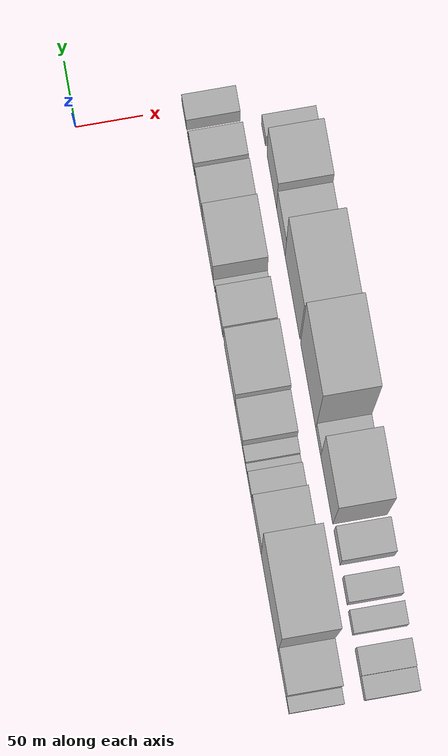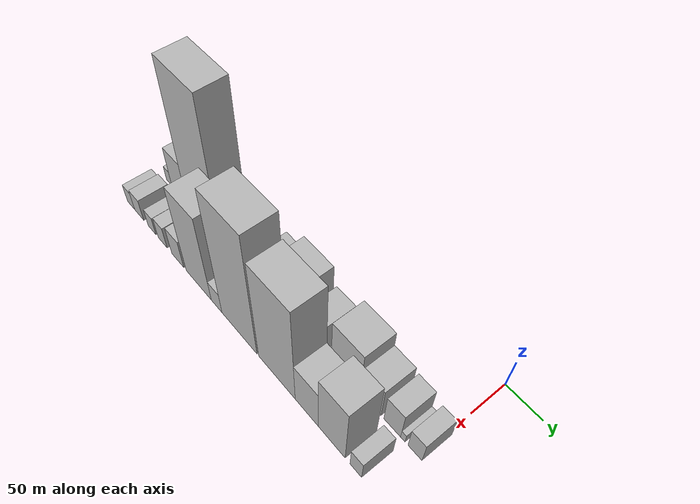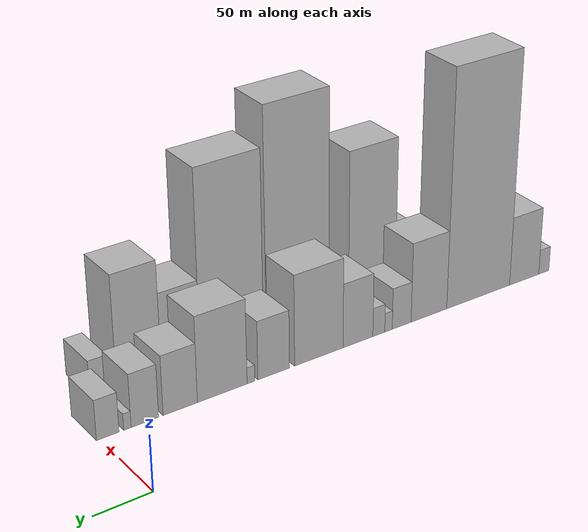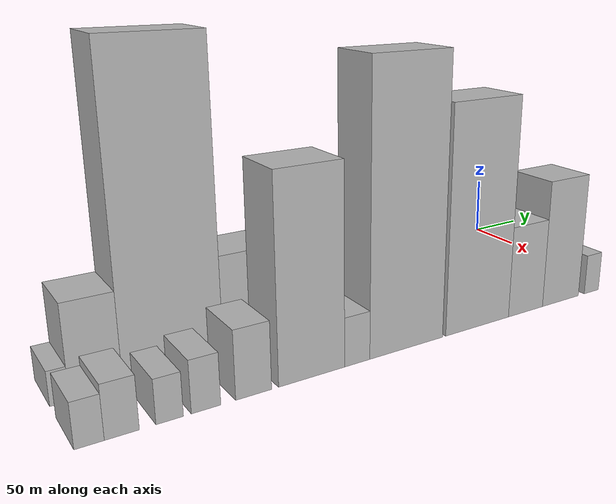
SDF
<sdf version="1.6">
 <world name="default">
  <model name="building_1">
   <static>1</static>
   <pose>100.0000 -444.0386 0 0.000000 0.000000 0.000000</pose>
   <link name="link">
    <pose>0 0 12.00 0 0 0</pose>
    <collision name="collision"><geometry><box><size>40.0000 11.9228 24.0000</size></box></geometry></collision>
    <visual name="visual">
     <cast_shadows>0</cast_shadows>
     <geometry><box><size>40.0000 11.9228 24.0000</size></box></geometry>
     <material>
      <script>
       <uri>model://HANNAS_wall/materials/scripts</uri>
       <uri>model://HANNAS_wall/materials/textures</uri>
       <name>vrc/HANNAS_wall</name>
      </script>
     </material>
    </visual>
   </link>
  </model>
  <model name="building_2">
   <static>1</static>
   <pose>100.0000 -421.1653 0 0.000000 0.000000 0.000000</pose>
   <link name="link">
    <pose>0 0 33.00 0 0 0</pose>
    <collision name="collision"><geometry><box><size>40.0000 33.8239 66.0000</size></box></geometry></collision>
    <visual name="visual">
     <cast_shadows>0</cast_shadows>
     <geometry><box><size>40.0000 33.8239 66.0000</size></box></geometry>
     <material>
      <script>
       <uri>model://HANNAS_wall/materials/scripts</uri>
       <uri>model://HANNAS_wall/materials/textures</uri>
       <name>vrc/HANNAS_wall</name>
      </script>
     </material>
    </visual>
   </link>
  </model>
  <model name="building_3">
   <static>1</static>
   <pose>100.0000 -369.1145 0 0.000000 0.000000 0.000000</pose>
   <link name="link">
    <pose>0 0 111.00 0 0 0</pose>
    <collision name="collision"><geometry><box><size>40.0000 70.2777 222.0000</size></box></geometry></collision>
    <visual name="visual">
     <cast_shadows>0</cast_shadows>
     <geometry><box><size>40.0000 70.2777 222.0000</size></box></geometry>
     <material>
      <script>
       <uri>model://HANNAS_wall/materials/scripts</uri>
       <uri>model://HANNAS_wall/materials/textures</uri>
       <name>vrc/HANNAS_wall</name>
      </script>
     </material>
    </visual>
   </link>
  </model>
  <model name="building_4">
   <static>1</static>
   <pose>100.0000 -314.7945 0 0.000000 0.000000 0.000000</pose>
   <link name="link">
    <pose>0 0 37.50 0 0 0</pose>
    <collision name="collision"><geometry><box><size>40.0000 38.3623 75.0000</size></box></geometry></collision>
    <visual name="visual">
     <cast_shadows>0</cast_shadows>
     <geometry><box><size>40.0000 38.3623 75.0000</size></box></geometry>
     <material>
      <script>
       <uri>model://HANNAS_wall/materials/scripts</uri>
       <uri>model://HANNAS_wall/materials/textures</uri>
       <name>vrc/HANNAS_wall</name>
      </script>
     </material>
    </visual>
   </link>
  </model>
  <model name="building_5">
   <static>1</static>
   <pose>100.0000 -285.6695 0 0.000000 0.000000 0.000000</pose>
   <link name="link">
    <pose>0 0 19.50 0 0 0</pose>
    <collision name="collision"><geometry><box><size>40.0000 19.8878 39.0000</size></box></geometry></collision>
    <visual name="visual">
     <cast_shadows>0</cast_shadows>
     <geometry><box><size>40.0000 19.8878 39.0000</size></box></geometry>
     <material>
      <script>
       <uri>model://HANNAS_wall/materials/scripts</uri>
       <uri>model://HANNAS_wall/materials/textures</uri>
       <name>vrc/HANNAS_wall</name>
      </script>
     </material>
    </visual>
   </link>
  </model>
  <model name="building_6">
   <static>1</static>
   <pose>100.0000 -271.8458 0 0.000000 0.000000 0.000000</pose>
   <link name="link">
    <pose>0 0 9.00 0 0 0</pose>
    <collision name="collision"><geometry><box><size>40.0000 7.7594 18.0000</size></box></geometry></collision>
    <visual name="visual">
     <cast_shadows>0</cast_shadows>
     <geometry><box><size>40.0000 7.7594 18.0000</size></box></geometry>
     <material>
      <script>
       <uri>model://HANNAS_wall/materials/scripts</uri>
       <uri>model://HANNAS_wall/materials/textures</uri>
       <name>vrc/HANNAS_wall</name>
      </script>
     </material>
    </visual>
   </link>
  </model>
  <model name="building_7">
   <static>1</static>
   <pose>100.0000 -261.7881 0 0.000000 0.000000 0.000000</pose>
   <link name="link">
    <pose>0 0 13.50 0 0 0</pose>
    <collision name="collision"><geometry><box><size>40.0000 12.3560 27.0000</size></box></geometry></collision>
    <visual name="visual">
     <cast_shadows>0</cast_shadows>
     <geometry><box><size>40.0000 12.3560 27.0000</size></box></geometry>
     <material>
      <script>
       <uri>model://HANNAS_wall/materials/scripts</uri>
       <uri>model://HANNAS_wall/materials/textures</uri>
       <name>vrc/HANNAS_wall</name>
      </script>
     </material>
    </visual>
   </link>
  </model>
  <model name="building_8">
   <static>1</static>
   <pose>100.0000 -240.3838 0 0.000000 0.000000 0.000000</pose>
   <link name="link">
    <pose>0 0 30.00 0 0 0</pose>
    <collision name="collision"><geometry><box><size>40.0000 30.4526 60.0000</size></box></geometry></collision>
    <visual name="visual">
     <cast_shadows>0</cast_shadows>
     <geometry><box><size>40.0000 30.4526 60.0000</size></box></geometry>
     <material>
      <script>
       <uri>model://HANNAS_wall/materials/scripts</uri>
       <uri>model://HANNAS_wall/materials/textures</uri>
       <name>vrc/HANNAS_wall</name>
      </script>
     </material>
    </visual>
   </link>
  </model>
  <model name="building_9">
   <static>1</static>
   <pose>100.0000 -201.1493 0 0.000000 0.000000 0.000000</pose>
   <link name="link">
    <pose>0 0 42.00 0 0 0</pose>
    <collision name="collision"><geometry><box><size>40.0000 48.0162 84.0000</size></box></geometry></collision>
    <visual name="visual">
     <cast_shadows>0</cast_shadows>
     <geometry><box><size>40.0000 48.0162 84.0000</size></box></geometry>
     <material>
      <script>
       <uri>model://HANNAS_wall/materials/scripts</uri>
       <uri>model://HANNAS_wall/materials/textures</uri>
       <name>vrc/HANNAS_wall</name>
      </script>
     </material>
    </visual>
   </link>
  </model>
  <model name="building_10">
   <static>1</static>
   <pose>100.0000 -157.0162 0 0.000000 0.000000 0.000000</pose>
   <link name="link">
    <pose>0 0 27.00 0 0 0</pose>
    <collision name="collision"><geometry><box><size>40.0000 30.2501 54.0000</size></box></geometry></collision>
    <visual name="visual">
     <cast_shadows>0</cast_shadows>
     <geometry><box><size>40.0000 30.2501 54.0000</size></box></geometry>
     <material>
      <script>
       <uri>model://HANNAS_wall/materials/scripts</uri>
       <uri>model://HANNAS_wall/materials/textures</uri>
       <name>vrc/HANNAS_wall</name>
      </script>
     </material>
    </visual>
   </link>
  </model>
  <model name="building_11">
   <static>1</static>
   <pose>100.0000 -135.2753 0 0.000000 0.000000 0.000000</pose>
   <link name="link">
    <pose>0 0 7.50 0 0 0</pose>
    <collision name="collision"><geometry><box><size>40.0000 7.2317 15.0000</size></box></geometry></collision>
    <visual name="visual">
     <cast_shadows>0</cast_shadows>
     <geometry><box><size>40.0000 7.2317 15.0000</size></box></geometry>
     <material>
      <script>
       <uri>model://HANNAS_wall/materials/scripts</uri>
       <uri>model://HANNAS_wall/materials/textures</uri>
       <name>vrc/HANNAS_wall</name>
      </script>
     </material>
    </visual>
   </link>
  </model>
  <model name="building_12">
   <static>1</static>
   <pose>100.0000 -108.6396 0 0.000000 0.000000 0.000000</pose>
   <link name="link">
    <pose>0 0 39.00 0 0 0</pose>
    <collision name="collision"><geometry><box><size>40.0000 46.0396 78.0000</size></box></geometry></collision>
    <visual name="visual">
     <cast_shadows>0</cast_shadows>
     <geometry><box><size>40.0000 46.0396 78.0000</size></box></geometry>
     <material>
      <script>
       <uri>model://HANNAS_wall/materials/scripts</uri>
       <uri>model://HANNAS_wall/materials/textures</uri>
       <name>vrc/HANNAS_wall</name>
      </script>
     </material>
    </visual>
   </link>
  </model>
  <model name="building_13">
   <static>1</static>
   <pose>100.0000 -70.2083 0 0.000000 0.000000 0.000000</pose>
   <link name="link">
    <pose>0 0 27.00 0 0 0</pose>
    <collision name="collision"><geometry><box><size>40.0000 30.8231 54.0000</size></box></geometry></collision>
    <visual name="visual">
     <cast_shadows>0</cast_shadows>
     <geometry><box><size>40.0000 30.8231 54.0000</size></box></geometry>
     <material>
      <script>
       <uri>model://HANNAS_wall/materials/scripts</uri>
       <uri>model://HANNAS_wall/materials/textures</uri>
       <name>vrc/HANNAS_wall</name>
      </script>
     </material>
    </visual>
   </link>
  </model>
  <model name="building_14">
   <static>1</static>
   <pose>100.0000 -38.7486 0 0.000000 0.000000 0.000000</pose>
   <link name="link">
    <pose>0 0 24.00 0 0 0</pose>
    <collision name="collision"><geometry><box><size>40.0000 24.0963 48.0000</size></box></geometry></collision>
    <visual name="visual">
     <cast_shadows>0</cast_shadows>
     <geometry><box><size>40.0000 24.0963 48.0000</size></box></geometry>
     <material>
      <script>
       <uri>model://HANNAS_wall/materials/scripts</uri>
       <uri>model://HANNAS_wall/materials/textures</uri>
       <name>vrc/HANNAS_wall</name>
      </script>
     </material>
    </visual>
   </link>
  </model>
  <model name="building_15">
   <static>1</static>
   <pose>100.0000 -23.4992 0 0.000000 0.000000 0.000000</pose>
   <link name="link">
    <pose>0 0 7.50 0 0 0</pose>
    <collision name="collision"><geometry><box><size>40.0000 6.4025 15.0000</size></box></geometry></collision>
    <visual name="visual">
     <cast_shadows>0</cast_shadows>
     <geometry><box><size>40.0000 6.4025 15.0000</size></box></geometry>
     <material>
      <script>
       <uri>model://HANNAS_wall/materials/scripts</uri>
       <uri>model://HANNAS_wall/materials/textures</uri>
       <name>vrc/HANNAS_wall</name>
      </script>
     </material>
    </visual>
   </link>
  </model>
  <model name="building_16">
   <static>1</static>
   <pose>100.0000 -6.6108 0 0.000000 0.000000 0.000000</pose>
   <link name="link">
    <pose>0 0 18.00 0 0 0</pose>
    <collision name="collision"><geometry><box><size>40.0000 19.3743 36.0000</size></box></geometry></collision>
    <visual name="visual">
     <cast_shadows>0</cast_shadows>
     <geometry><box><size>40.0000 19.3743 36.0000</size></box></geometry>
     <material>
      <script>
       <uri>model://HANNAS_wall/materials/scripts</uri>
       <uri>model://HANNAS_wall/materials/textures</uri>
       <name>vrc/HANNAS_wall</name>
      </script>
     </material>
    </visual>
   </link>
  </model>
  <model name="building_30">
   <static>1</static>
   <pose>155.0000 -441.4022 0 0.000000 0.000000 0.000000</pose>
   <link name="link">
    <pose>0 0 15.00 0 0 0</pose>
    <collision name="collision"><geometry><box><size>40.0000 17.1955 30.0000</size></box></geometry></collision>
    <visual name="visual">
     <cast_shadows>0</cast_shadows>
     <geometry><box><size>40.0000 17.1955 30.0000</size></box></geometry>
     <material>
      <script>
       <uri>model://HANNAS_wall/materials/scripts</uri>
       <uri>model://HANNAS_wall/materials/textures</uri>
       <name>vrc/HANNAS_wall</name>
      </script>
     </material>
    </visual>
   </link>
  </model>
  <model name="building_31">
   <static>1</static>
   <pose>155.0000 -422.5374 0 0.000000 0.000000 0.000000</pose>
   <link name="link">
    <pose>0 0 18.00 0 0 0</pose>
    <collision name="collision"><geometry><box><size>40.0000 20.5342 36.0000</size></box></geometry></collision>
    <visual name="visual">
     <cast_shadows>0</cast_shadows>
     <geometry><box><size>40.0000 20.5342 36.0000</size></box></geometry>
     <material>
      <script>
       <uri>model://HANNAS_wall/materials/scripts</uri>
       <uri>model://HANNAS_wall/materials/textures</uri>
       <name>vrc/HANNAS_wall</name>
      </script>
     </material>
    </visual>
   </link>
  </model>
  <model name="building_32">
   <static>1</static>
   <pose>155.0000 -393.6739 0 0.000000 0.000000 0.000000</pose>
   <link name="link">
    <pose>0 0 15.00 0 0 0</pose>
    <collision name="collision"><geometry><box><size>40.0000 17.1926 30.0000</size></box></geometry></collision>
    <visual name="visual">
     <cast_shadows>0</cast_shadows>
     <geometry><box><size>40.0000 17.1926 30.0000</size></box></geometry>
     <material>
      <script>
       <uri>model://HANNAS_wall/materials/scripts</uri>
       <uri>model://HANNAS_wall/materials/textures</uri>
       <name>vrc/HANNAS_wall</name>
      </script>
     </material>
    </visual>
   </link>
  </model>
  <model name="building_33">
   <static>1</static>
   <pose>155.0000 -370.4183 0 0.000000 0.000000 0.000000</pose>
   <link name="link">
    <pose>0 0 18.00 0 0 0</pose>
    <collision name="collision"><geometry><box><size>40.0000 19.3187 36.0000</size></box></geometry></collision>
    <visual name="visual">
     <cast_shadows>0</cast_shadows>
     <geometry><box><size>40.0000 19.3187 36.0000</size></box></geometry>
     <material>
      <script>
       <uri>model://HANNAS_wall/materials/scripts</uri>
       <uri>model://HANNAS_wall/materials/textures</uri>
       <name>vrc/HANNAS_wall</name>
      </script>
     </material>
    </visual>
   </link>
  </model>
  <model name="building_34">
   <static>1</static>
   <pose>155.0000 -338.1795 0 0.000000 0.000000 0.000000</pose>
   <link name="link">
    <pose>0 0 24.00 0 0 0</pose>
    <collision name="collision"><geometry><box><size>40.0000 25.1588 48.0000</size></box></geometry></collision>
    <visual name="visual">
     <cast_shadows>0</cast_shadows>
     <geometry><box><size>40.0000 25.1588 48.0000</size></box></geometry>
     <material>
      <script>
       <uri>model://HANNAS_wall/materials/scripts</uri>
       <uri>model://HANNAS_wall/materials/textures</uri>
       <name>vrc/HANNAS_wall</name>
      </script>
     </material>
    </visual>
   </link>
  </model>
  <model name="building_35">
   <static>1</static>
   <pose>155.0000 -295.5371 0 0.000000 0.000000 0.000000</pose>
   <link name="link">
    <pose>0 0 72.00 0 0 0</pose>
    <collision name="collision"><geometry><box><size>40.0000 50.1261 144.0000</size></box></geometry></collision>
    <visual name="visual">
     <cast_shadows>0</cast_shadows>
     <geometry><box><size>40.0000 50.1261 144.0000</size></box></geometry>
     <material>
      <script>
       <uri>model://HANNAS_wall/materials/scripts</uri>
       <uri>model://HANNAS_wall/materials/textures</uri>
       <name>vrc/HANNAS_wall</name>
      </script>
     </material>
    </visual>
   </link>
  </model>
  <model name="building_36">
   <static>1</static>
   <pose>155.0000 -260.2207 0 0.000000 0.000000 0.000000</pose>
   <link name="link">
    <pose>0 0 18.00 0 0 0</pose>
    <collision name="collision"><geometry><box><size>40.0000 20.5068 36.0000</size></box></geometry></collision>
    <visual name="visual">
     <cast_shadows>0</cast_shadows>
     <geometry><box><size>40.0000 20.5068 36.0000</size></box></geometry>
     <material>
      <script>
       <uri>model://HANNAS_wall/materials/scripts</uri>
       <uri>model://HANNAS_wall/materials/textures</uri>
       <name>vrc/HANNAS_wall</name>
      </script>
     </material>
    </visual>
   </link>
  </model>
  <model name="building_37">
   <static>1</static>
   <pose>155.0000 -218.1202 0 0.000000 0.000000 0.000000</pose>
   <link name="link">
    <pose>0 0 103.50 0 0 0</pose>
    <collision name="collision"><geometry><box><size>40.0000 63.6941 207.0000</size></box></geometry></collision>
    <visual name="visual">
     <cast_shadows>0</cast_shadows>
     <geometry><box><size>40.0000 63.6941 207.0000</size></box></geometry>
     <material>
      <script>
       <uri>model://HANNAS_wall/materials/scripts</uri>
       <uri>model://HANNAS_wall/materials/textures</uri>
       <name>vrc/HANNAS_wall</name>
      </script>
     </material>
    </visual>
   </link>
  </model>
  <model name="building_38">
   <static>1</static>
   <pose>155.0000 -152.4627 0 0.000000 0.000000 0.000000</pose>
   <link name="link">
    <pose>0 0 85.50 0 0 0</pose>
    <collision name="collision"><geometry><box><size>40.0000 61.6210 171.0000</size></box></geometry></collision>
    <visual name="visual">
     <cast_shadows>0</cast_shadows>
     <geometry><box><size>40.0000 61.6210 171.0000</size></box></geometry>
     <material>
      <script>
       <uri>model://HANNAS_wall/materials/scripts</uri>
       <uri>model://HANNAS_wall/materials/textures</uri>
       <name>vrc/HANNAS_wall</name>
      </script>
     </material>
    </visual>
   </link>
  </model>
  <model name="building_39">
   <static>1</static>
   <pose>155.0000 -103.5300 0 0.000000 0.000000 0.000000</pose>
   <link name="link">
    <pose>0 0 36.00 0 0 0</pose>
    <collision name="collision"><geometry><box><size>40.0000 36.2444 72.0000</size></box></geometry></collision>
    <visual name="visual">
     <cast_shadows>0</cast_shadows>
     <geometry><box><size>40.0000 36.2444 72.0000</size></box></geometry>
     <material>
      <script>
       <uri>model://HANNAS_wall/materials/scripts</uri>
       <uri>model://HANNAS_wall/materials/textures</uri>
       <name>vrc/HANNAS_wall</name>
      </script>
     </material>
    </visual>
   </link>
  </model>
  <model name="building_40">
   <static>1</static>
   <pose>155.0000 -65.0775 0 0.000000 0.000000 0.000000</pose>
   <link name="link">
    <pose>0 0 51.00 0 0 0</pose>
    <collision name="collision"><geometry><box><size>40.0000 40.6607 102.0000</size></box></geometry></collision>
    <visual name="visual">
     <cast_shadows>0</cast_shadows>
     <geometry><box><size>40.0000 40.6607 102.0000</size></box></geometry>
     <material>
      <script>
       <uri>model://HANNAS_wall/materials/scripts</uri>
       <uri>model://HANNAS_wall/materials/textures</uri>
       <name>vrc/HANNAS_wall</name>
      </script>
     </material>
    </visual>
   </link>
  </model>
  <model name="building_41">
   <static>1</static>
   <pose>155.0000 -29.3639 0 0.000000 0.000000 0.000000</pose>
   <link name="link">
    <pose>0 0 16.50 0 0 0</pose>
    <collision name="collision"><geometry><box><size>40.0000 16.7666 33.0000</size></box></geometry></collision>
    <visual name="visual">
     <cast_shadows>0</cast_shadows>
     <geometry><box><size>40.0000 16.7666 33.0000</size></box></geometry>
     <material>
      <script>
       <uri>model://HANNAS_wall/materials/scripts</uri>
       <uri>model://HANNAS_wall/materials/textures</uri>
       <name>vrc/HANNAS_wall</name>
      </script>
     </material>
    </visual>
   </link>
  </model>
 </world>
</sdf>
